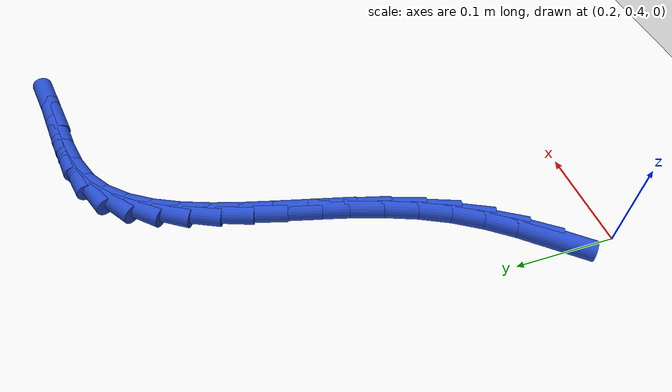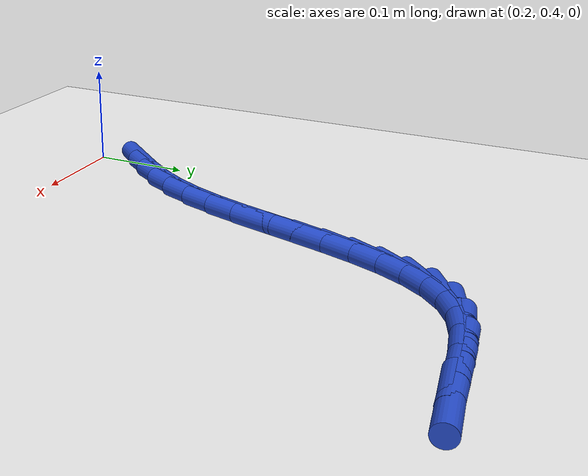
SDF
<sdf version="1.6">
 <world name="default">
  <model name="ground_plane">
   <static>1</static>
   <link name="link">
    <collision name="collision">
     <geometry><plane><normal>0 0 1</normal><size>100 100</size></plane></geometry>
     <surface><friction><ode><mu>100</mu><mu2>50</mu2></ode></friction></surface>
    </collision>
    <visual name="visual">
     <cast_shadows>0</cast_shadows>
     <geometry><plane><normal>0 0 1</normal><size>100 100</size></plane></geometry>
     <material>
      <script><uri>file://media/materials/scripts/gazebo.material</uri><name>Gazebo/WhiteGlow</name></script>
     </material>
    </visual>
   </link>
  </model>
  <model name="line">
   <link name="link_18">
    <pose>0.21366188408661854 0.45965370815814766 0.01 0 1.57 0.8711649982706587</pose>
    <collision name="collision">
     <geometry><cylinder><radius>0.01</radius><length>0.08</length></cylinder></geometry>
    </collision>
    <visual name="visual">
     <material>
      <script><name>Gazebo/Blue</name><uri>file://media/materials/scripts/gazebo.material</uri></script>
     </material>
     <geometry><cylinder><radius>0.01</radius><length>0.08</length></cylinder></geometry>
    </visual>
   </link>
   <link name="link_19">
    <pose>0.23338569999211778 0.4830881764177077 0.01 0 1.57 0.9402610401511503</pose>
    <collision name="collision">
     <geometry><cylinder><radius>0.01</radius><length>0.08</length></cylinder></geometry>
    </collision>
    <visual name="visual">
     <material>
      <script><name>Gazebo/Blue</name><uri>file://media/materials/scripts/gazebo.material</uri></script>
     </material>
     <geometry><cylinder><radius>0.01</radius><length>0.08</length></cylinder></geometry>
    </visual>
   </link>
   <link name="link_20">
    <pose>0.25154200217701955 0.5079620414880951 0.01 0 1.57 1.0251575916252154</pose>
    <collision name="collision">
     <geometry><cylinder><radius>0.01</radius><length>0.08</length></cylinder></geometry>
    </collision>
    <visual name="visual">
     <material>
      <script><name>Gazebo/Blue</name><uri>file://media/materials/scripts/gazebo.material</uri></script>
     </material>
     <geometry><cylinder><radius>0.01</radius><length>0.08</length></cylinder></geometry>
    </visual>
   </link>
   <link name="link_21">
    <pose>0.2677002502008228 0.5345766055320087 0.01 0 1.57 1.122738086164052</pose>
    <collision name="collision">
     <geometry><cylinder><radius>0.01</radius><length>0.08</length></cylinder></geometry>
    </collision>
    <visual name="visual">
     <material>
      <script><name>Gazebo/Blue</name><uri>file://media/materials/scripts/gazebo.material</uri></script>
     </material>
     <geometry><cylinder><radius>0.01</radius><length>0.08</length></cylinder></geometry>
    </visual>
   </link>
   <link name="link_22">
    <pose>0.281460899666437 0.5632051147447366 0.01 0 1.57 1.209706868842813</pose>
    <collision name="collision">
     <geometry><cylinder><radius>0.01</radius><length>0.08</length></cylinder></geometry>
    </collision>
    <visual name="visual">
     <material>
      <script><name>Gazebo/Blue</name><uri>file://media/materials/scripts/gazebo.material</uri></script>
     </material>
     <geometry><cylinder><radius>0.01</radius><length>0.08</length></cylinder></geometry>
    </visual>
   </link>
   <link name="link_23">
    <pose>0.29295481800520595 0.5936407147882385 0.01 0 1.57 1.270271027608506</pose>
    <collision name="collision">
     <geometry><cylinder><radius>0.01</radius><length>0.08</length></cylinder></geometry>
    </collision>
    <visual name="visual">
     <material>
      <script><name>Gazebo/Blue</name><uri>file://media/materials/scripts/gazebo.material</uri></script>
     </material>
     <geometry><cylinder><radius>0.01</radius><length>0.08</length></cylinder></geometry>
    </visual>
   </link>
   <link name="link_24">
    <pose>0.3027581874149358 0.6252734761187259 0.01 0 1.57 1.3068878999838809</pose>
    <collision name="collision">
     <geometry><cylinder><radius>0.01</radius><length>0.08</length></cylinder></geometry>
    </collision>
    <visual name="visual">
     <material>
      <script><name>Gazebo/Blue</name><uri>file://media/materials/scripts/gazebo.material</uri></script>
     </material>
     <geometry><cylinder><radius>0.01</radius><length>0.08</length></cylinder></geometry>
    </visual>
   </link>
   <link name="link_25">
    <pose>0.31146100340579586 0.6574809661178608 0.01 0 1.57 1.321365160492764</pose>
    <collision name="collision">
     <geometry><cylinder><radius>0.01</radius><length>0.08</length></cylinder></geometry>
    </collision>
    <visual name="visual">
     <material>
      <script><name>Gazebo/Blue</name><uri>file://media/materials/scripts/gazebo.material</uri></script>
     </material>
     <geometry><cylinder><radius>0.01</radius><length>0.08</length></cylinder></geometry>
    </visual>
   </link>
   <link name="link_26">
    <pose>0.31965326148795503 0.6896407521673056 0.01 0 1.57 1.313919769041572</pose>
    <collision name="collision">
     <geometry><cylinder><radius>0.01</radius><length>0.08</length></cylinder></geometry>
    </collision>
    <visual name="visual">
     <material>
      <script><name>Gazebo/Blue</name><uri>file://media/materials/scripts/gazebo.material</uri></script>
     </material>
     <geometry><cylinder><radius>0.01</radius><length>0.08</length></cylinder></geometry>
    </visual>
   </link>
   <link name="link_27">
    <pose>0.32792495717158254 0.7211304016487228 0.01 0 1.57 1.2829282449685524</pose>
    <collision name="collision">
     <geometry><cylinder><radius>0.01</radius><length>0.08</length></cylinder></geometry>
    </collision>
    <visual name="visual">
     <material>
      <script><name>Gazebo/Blue</name><uri>file://media/materials/scripts/gazebo.material</uri></script>
     </material>
     <geometry><cylinder><radius>0.01</radius><length>0.08</length></cylinder></geometry>
    </visual>
   </link>
   <link name="link_28">
    <pose>0.3368660859668477 0.751327481943775 0.01 0 1.57 1.224645860056994</pose>
    <collision name="collision">
     <geometry><cylinder><radius>0.01</radius><length>0.08</length></cylinder></geometry>
    </collision>
    <visual name="visual">
     <material>
      <script><name>Gazebo/Blue</name><uri>file://media/materials/scripts/gazebo.material</uri></script>
     </material>
     <geometry><cylinder><radius>0.01</radius><length>0.08</length></cylinder></geometry>
    </visual>
   </link>
   <link name="link_29">
    <pose>0.34706664338391935 0.779609560434124 0.01 0 1.57 1.133027419413509</pose>
    <collision name="collision">
     <geometry><cylinder><radius>0.01</radius><length>0.08</length></cylinder></geometry>
    </collision>
    <visual name="visual">
     <material>
      <script><name>Gazebo/Blue</name><uri>file://media/materials/scripts/gazebo.material</uri></script>
     </material>
     <geometry><cylinder><radius>0.01</radius><length>0.08</length></cylinder></geometry>
    </visual>
   </link>
   <link name="link_30">
    <pose>0.359116624932967 0.8053542045014328 0.01 0 1.57 1.0003799940282918</pose>
    <collision name="collision">
     <geometry><cylinder><radius>0.01</radius><length>0.08</length></cylinder></geometry>
    </collision>
    <visual name="visual">
     <material>
      <script><name>Gazebo/Blue</name><uri>file://media/materials/scripts/gazebo.material</uri></script>
     </material>
     <geometry><cylinder><radius>0.01</radius><length>0.08</length></cylinder></geometry>
    </visual>
   </link>
   <link name="link_31">
    <pose>0.3736060261241594 0.8279389815273631 0.01 0 1.57 0.8207252908671735</pose>
    <collision name="collision">
     <geometry><cylinder><radius>0.01</radius><length>0.08</length></cylinder></geometry>
    </collision>
    <visual name="visual">
     <material>
      <script><name>Gazebo/Blue</name><uri>file://media/materials/scripts/gazebo.material</uri></script>
     </material>
     <geometry><cylinder><radius>0.01</radius><length>0.08</length></cylinder></geometry>
    </visual>
   </link>
   <link name="link_32">
    <pose>0.3911248424676661 0.8467414588935783 0.01 0 1.57 0.5979445767017307</pose>
    <collision name="collision">
     <geometry><cylinder><radius>0.01</radius><length>0.08</length></cylinder></geometry>
    </collision>
    <visual name="visual">
     <material>
      <script><name>Gazebo/Blue</name><uri>file://media/materials/scripts/gazebo.material</uri></script>
     </material>
     <geometry><cylinder><radius>0.01</radius><length>0.08</length></cylinder></geometry>
    </visual>
   </link>
   <link name="link_33">
    <pose>0.412263069473656 0.8611392039817398 0.01 0 1.57 0.3687455745161602</pose>
    <collision name="collision">
     <geometry><cylinder><radius>0.01</radius><length>0.08</length></cylinder></geometry>
    </collision>
    <visual name="visual">
     <material>
      <script><name>Gazebo/Blue</name><uri>file://media/materials/scripts/gazebo.material</uri></script>
     </material>
     <geometry><cylinder><radius>0.01</radius><length>0.08</length></cylinder></geometry>
    </visual>
   </link>
   <link name="link_34">
    <pose>0.4373518358921339 0.8708340232698599 0.01 0 1.57 0.21467041572185866</pose>
    <collision name="collision">
     <geometry><cylinder><radius>0.01</radius><length>0.08</length></cylinder></geometry>
    </collision>
    <visual name="visual">
     <material>
      <script><name>Gazebo/Blue</name><uri>file://media/materials/scripts/gazebo.material</uri></script>
     </material>
     <geometry><cylinder><radius>0.01</radius><length>0.08</length></cylinder></geometry>
    </visual>
   </link>
   <link name="link_35">
    <pose>0.4655594951410916 0.876984137426286 0.01 0 1.57 0.13743042600279587</pose>
    <collision name="collision">
     <geometry><cylinder><radius>0.01</radius><length>0.08</length></cylinder></geometry>
    </collision>
    <visual name="visual">
     <material>
      <script><name>Gazebo/Blue</name><uri>file://media/materials/scripts/gazebo.material</uri></script>
     </material>
     <geometry><cylinder><radius>0.01</radius><length>0.08</length></cylinder></geometry>
    </visual>
   </link>
   <link name="link_36">
    <pose>0.49572806150552584 0.8811565175727589 0.01 0 1.57 0.1208629684910558</pose>
    <collision name="collision">
     <geometry><cylinder><radius>0.01</radius><length>0.08</length></cylinder></geometry>
    </collision>
    <visual name="visual">
     <material>
      <script><name>Gazebo/Blue</name><uri>file://media/materials/scripts/gazebo.material</uri></script>
     </material>
     <geometry><cylinder><radius>0.01</radius><length>0.08</length></cylinder></geometry>
    </visual>
   </link>
   <link name="link_37">
    <pose>0.5266995324904046 0.8849181558485553 0.01 0 1.57 0.1592688564279565</pose>
    <collision name="collision">
     <geometry><cylinder><radius>0.01</radius><length>0.08</length></cylinder></geometry>
    </collision>
    <visual name="visual">
     <material>
      <script><name>Gazebo/Blue</name><uri>file://media/materials/scripts/gazebo.material</uri></script>
     </material>
     <geometry><cylinder><radius>0.01</radius><length>0.08</length></cylinder></geometry>
    </visual>
   </link>
  </model>
 </world>
</sdf>
